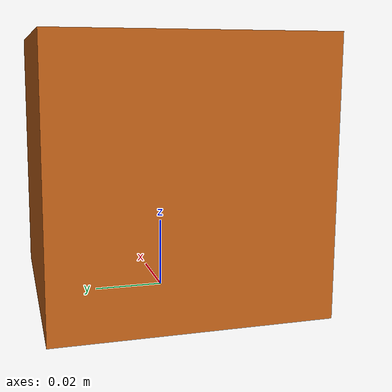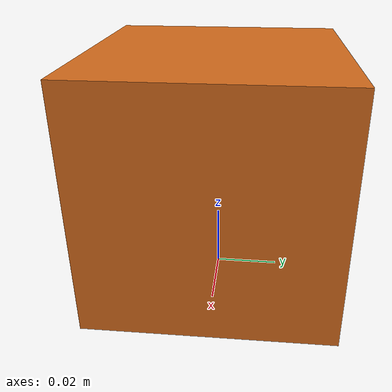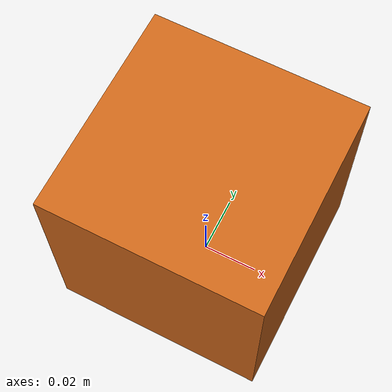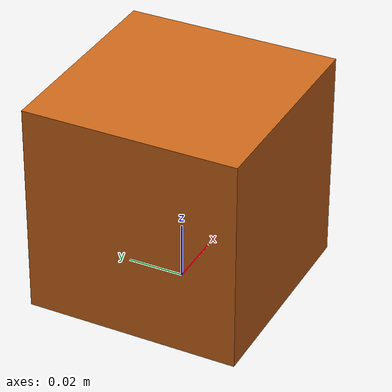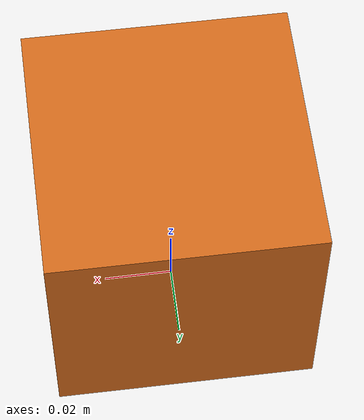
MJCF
<!-- assets/cube.xml -->
<mujoco model="cube">
  <option integrator="Euler"/>
  <asset>
    <material name="cube_mat" rgba="0.8 0.4 0.1 1" specular="0.5" shininess="0.8"/>
  </asset>
  <worldbody>
    <body name="cube" pos="0 0 0.0375">
      <freejoint name="cube_free"/>
      <inertial pos="0 0 0" mass="0.05" diaginertia="0.0001 0.0001 0.0001"/>
      <geom name="cube_geom"
            type="box"
            size="0.0375 0.0375 0.0375"
            material="cube_mat"
            friction="1 0.005 0.0001"/>
    </body>
  </worldbody>
</mujoco>
